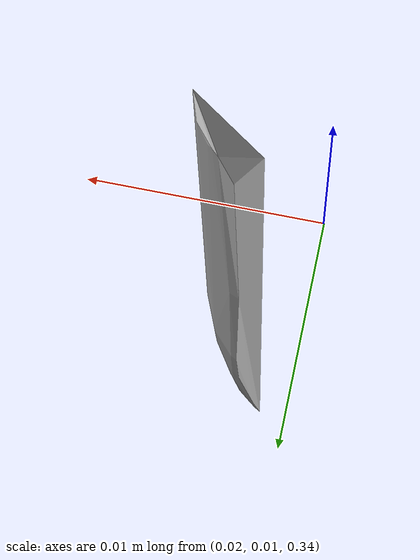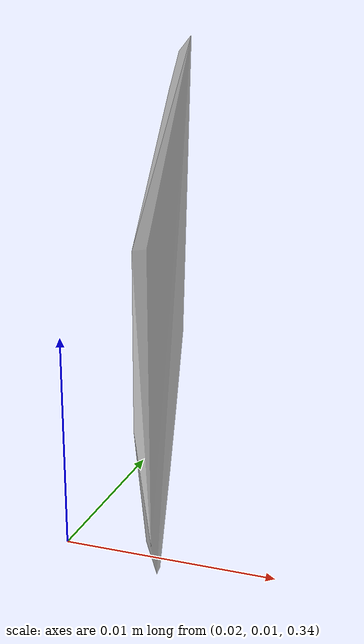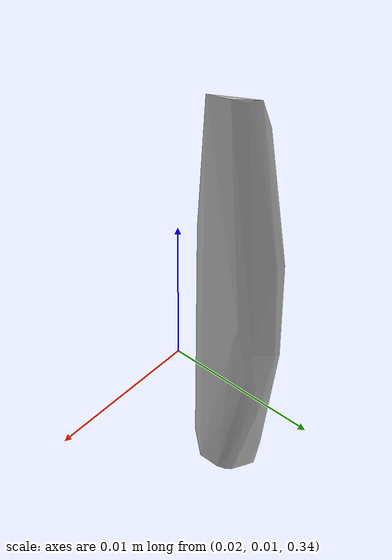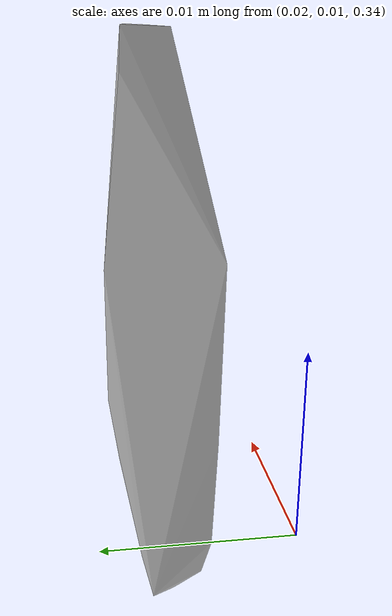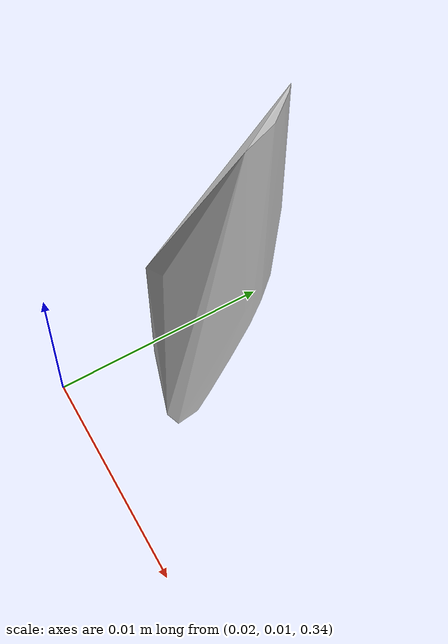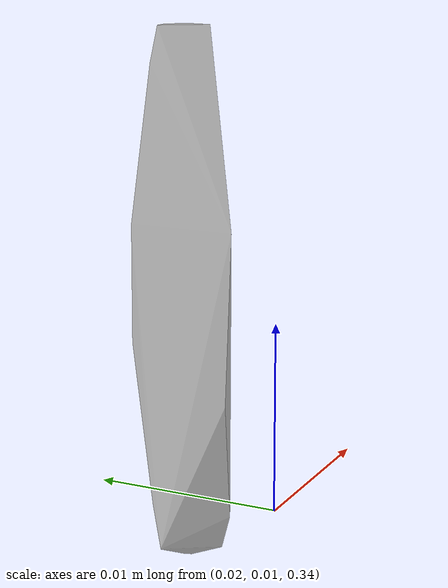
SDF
<?xml version="1.0"?>
<sdf version="1.7">
  <model name="vascular_partexport053">
    <link name="vascular_partexport053_body">
      <visual name="vascular_partexport053_visual">
        <geometry>
          <mesh>
            <uri>vascular_partexport053.obj</uri>
          </mesh>
        </geometry>
      </visual>
      <collision name="vascular_partexport053_collision">
        <geometry>
          <mesh>
            <uri>vascular_partexport053.obj</uri>
          </mesh>
        </geometry>
      </collision>
    </link>
    <frame name="vascular_partexport053_center">
      <pose relative_to="vascular_partexport053_body">0 0 0 0 0 0</pose>
    </frame>
  </model>
</sdf>
